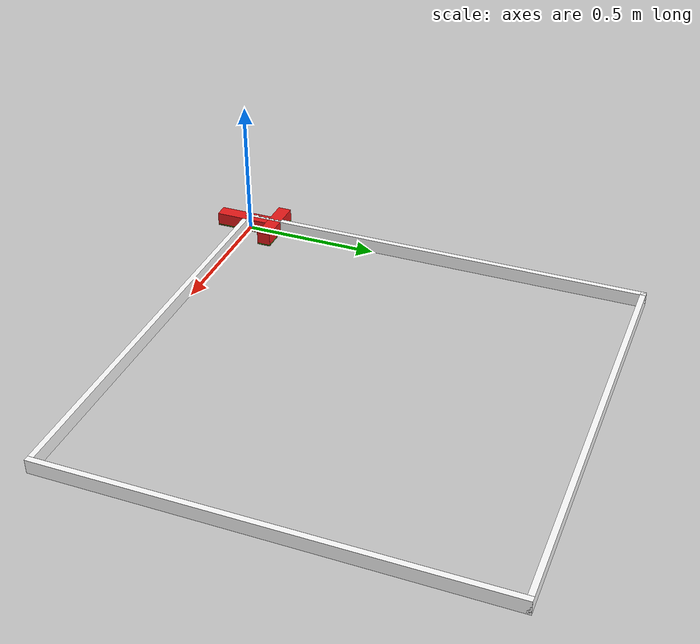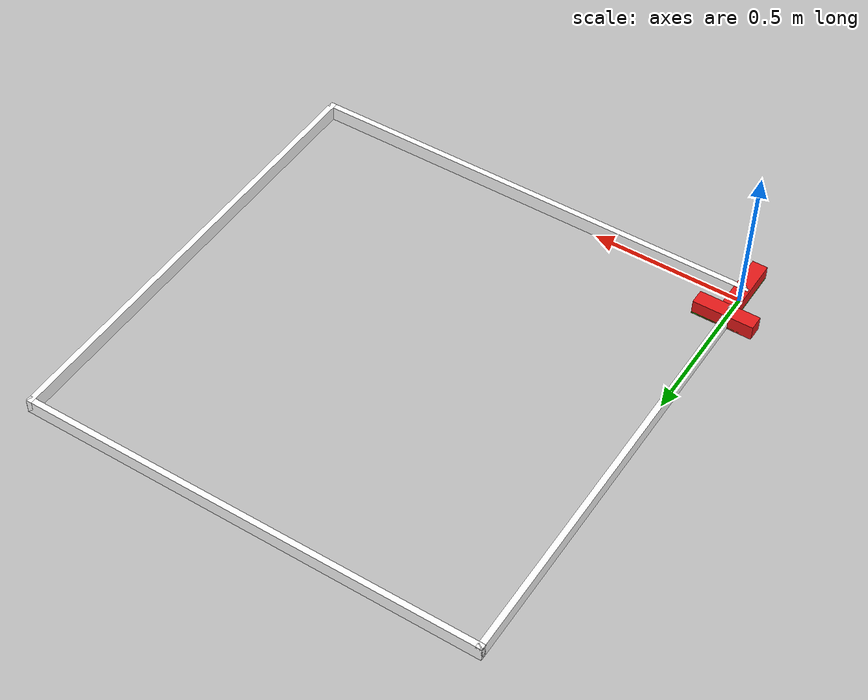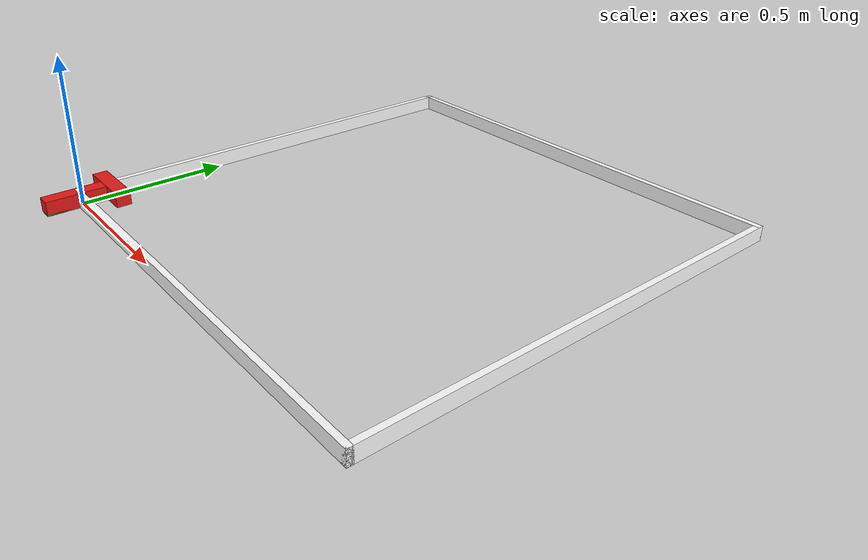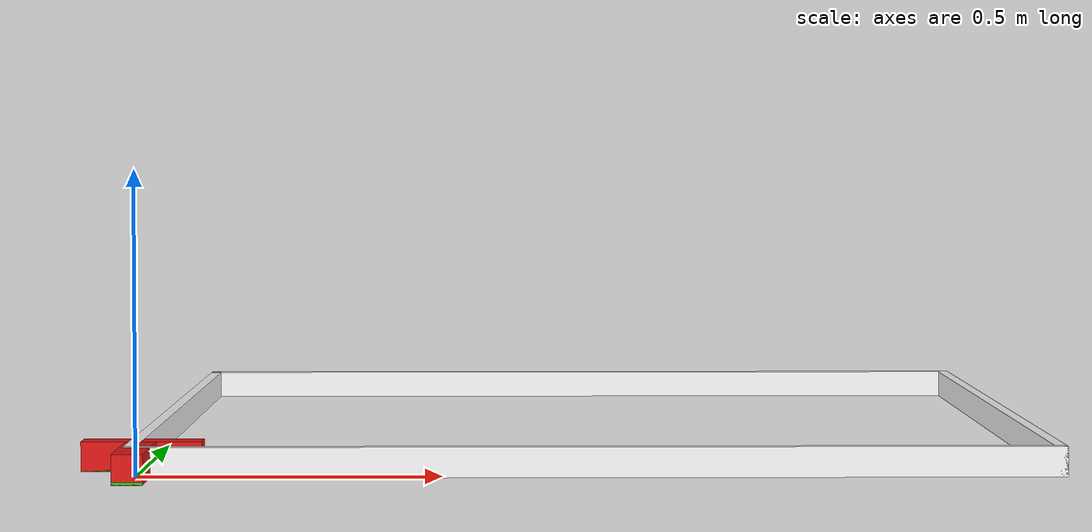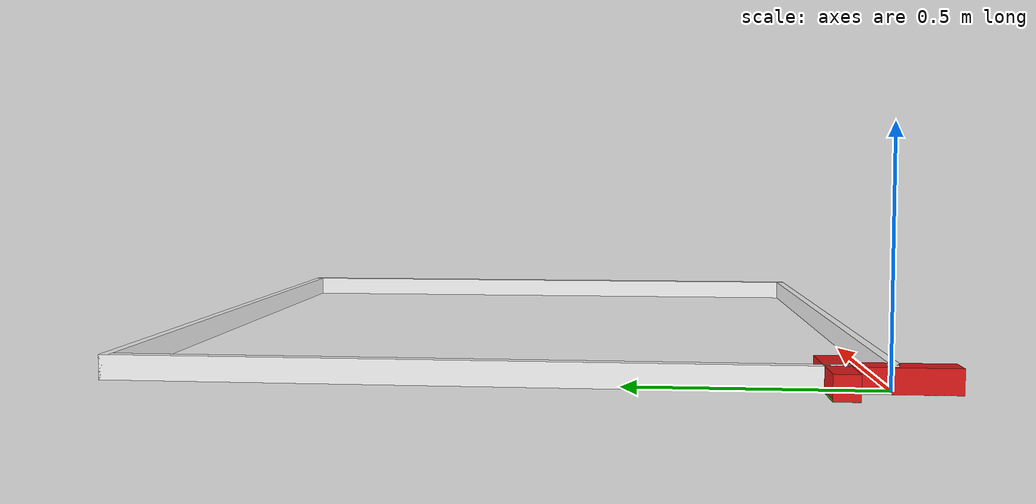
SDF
<?xml version="1.0"?>
<sdf version="1.7">
  <model name="pusht_env">
    <self_collide>true</self_collide>

    <!-- Canonical root link for the environment (floating base) -->
    <link name="env_center">
      <pose>0 0 0 0 0 0</pose>
      <inertial>
        <mass>1e-3</mass>
        <inertia>
          <ixx>1e-6</ixx><iyy>1e-6</iyy><izz>1e-6</izz><ixy>0</ixy><ixz>0</ixz><iyz>0</iyz>
        </inertia>
      </inertial>
    </link>

    <link name="wall_left">
      <gravity>false</gravity>
      <pose>-0.01 0.75 0.025 0 0 0</pose>
      <inertial>
        <mass>1.0</mass>
        <inertia>
          <ixx>0.2</ixx><iyy>0.2</iyy><izz>0.2</izz><ixy>0</ixy><ixz>0</ixz><iyz>0</iyz>
        </inertia>
      </inertial>
      <collision name="wall_left_collision">
        <geometry>
          <box><size>0.02 1.54 0.05</size></box>
        </geometry>
      </collision>
      <visual name="wall_left_visual">
        <geometry>
          <box><size>0.02 1.54 0.05</size></box>
        </geometry>
        <material>
          <ambient>1.0 1.0 1.0 1.0</ambient>
          <diffuse>1.0 1.0 1.0 1.0</diffuse>
        </material>
      </visual>
    </link>
    <joint name="wall_left_joint" type="revolute">
      <parent>env_center</parent>
      <child>wall_left</child>
      <axis>
        <xyz>0 0 1</xyz>
        <limit>
          <lower>0</lower>
          <upper>0</upper>
        </limit>
      </axis>
    </joint>

    <link name="wall_right">
      <gravity>false</gravity>
      <pose>1.51 0.75 0.025 0 0 0</pose>
      <inertial>
        <mass>1.0</mass>
        <inertia>
          <ixx>0.2</ixx><iyy>0.2</iyy><izz>0.2</izz><ixy>0</ixy><ixz>0</ixz><iyz>0</iyz>
        </inertia>
      </inertial>
      <collision name="wall_right_collision">
        <geometry>
          <box><size>0.02 1.54 0.05</size></box>
        </geometry>
      </collision>
      <visual name="wall_right_visual">
        <geometry>
          <box><size>0.02 1.54 0.05</size></box>
        </geometry>
        <material>
          <ambient>1.0 1.0 1.0 1.0</ambient>
          <diffuse>1.0 1.0 1.0 1.0</diffuse>
        </material>
      </visual>
    </link>
    <joint name="wall_right_joint" type="revolute">
      <parent>env_center</parent>
      <child>wall_right</child>
      <axis>
        <xyz>0 0 1</xyz>
        <limit>
          <lower>0</lower>
          <upper>0</upper>
        </limit>
      </axis>
    </joint>

    <link name="wall_bottom">
      <gravity>false</gravity>
      <pose>0.75 -0.01 0.025 0 0 0</pose>
      <inertial>
        <mass>1.0</mass>
        <inertia>
          <ixx>0.2</ixx><iyy>0.2</iyy><izz>0.2</izz><ixy>0</ixy><ixz>0</ixz><iyz>0</iyz>
        </inertia>
      </inertial>
      <collision name="wall_bottom_collision">
        <geometry>
          <box><size>1.54 0.02 0.05</size></box>
        </geometry>
      </collision>
      <visual name="wall_bottom_visual">
        <geometry>
          <box><size>1.54 0.02 0.05</size></box>
        </geometry>
        <material>
          <ambient>1.0 1.0 1.0 1.0</ambient>
          <diffuse>1.0 1.0 1.0 1.0</diffuse>
        </material>
      </visual>
    </link>
    <joint name="wall_bottom_joint" type="revolute">
      <parent>env_center</parent>
      <child>wall_bottom</child>
      <axis>
        <xyz>0 0 1</xyz>
        <limit>
          <lower>0</lower>
          <upper>0</upper>
        </limit>
      </axis>
    </joint>

    <link name="wall_top">
      <gravity>false</gravity>
      <pose>0.75 1.51 0.025 0 0 0</pose>
      <inertial>
        <mass>1.0</mass>
        <inertia>
          <ixx>0.2</ixx><iyy>0.2</iyy><izz>0.2</izz><ixy>0</ixy><ixz>0</ixz><iyz>0</iyz>
        </inertia>
      </inertial>
      <collision name="wall_top_collision">
        <geometry>
          <box><size>1.54 0.02 0.05</size></box>
        </geometry>
      </collision>
      <visual name="wall_top_visual">
        <geometry>
          <box><size>1.54 0.02 0.05</size></box>
        </geometry>
        <material>
          <ambient>1.0 1.0 1.0 1.0</ambient>
          <diffuse>1.0 1.0 1.0 1.0</diffuse>
        </material>
      </visual>
    </link>
    <joint name="wall_top_joint" type="revolute">
      <parent>env_center</parent>
      <child>wall_top</child>
      <axis>
        <xyz>0 0 1</xyz>
        <limit>
          <lower>0</lower>
          <upper>0</upper>
        </limit>
      </axis>
    </joint>

    <!-- ==================== T-BLOCK ==================== -->
    <link name="t_block_x">
      <inertial>
        <mass>1e-3</mass>
        <inertia>
          <ixx>1e-6</ixx><iyy>1e-6</iyy><izz>1e-6</izz><ixy>0</ixy><ixz>0</ixz><iyz>0</iyz>
        </inertia>
      </inertial>
    </link>
    <joint name="t_block_joint_x" type="prismatic">
      <parent>env_center</parent>
      <child>t_block_x</child>
      <axis><xyz>1 0 0</xyz></axis>
    </joint>

    <link name="t_block_y">
      <inertial>
        <mass>1e-3</mass>
        <inertia>
          <ixx>1e-6</ixx><iyy>1e-6</iyy><izz>1e-6</izz><ixy>0</ixy><ixz>0</ixz><iyz>0</iyz>
        </inertia>
      </inertial>
    </link>
    <joint name="t_block_joint_y" type="prismatic">
      <parent>t_block_x</parent>
      <child>t_block_y</child>
      <axis><xyz>0 1 0</xyz></axis>
    </joint>

    <link name="t_block">
      <pose>0 0 0 0 0 0</pose>
      <inertial>
        <pose>0 0.0375 0.025 0 0 0</pose>
        <mass>0.60</mass>
        <inertia>
          <ixx>3.531e-3</ixx>
          <iyy>1.188e-3</iyy>
          <izz>4.469e-3</izz>
          <ixy>0</ixy>
          <ixz>0</ixz>
          <iyz>0</iyz>
        </inertia>
      </inertial>

      <!-- Top bar -->
      <collision name="top_bar">
        <pose>0 0.10 0.025 0 0 0</pose>
        <geometry>
          <box><size>0.20 0.05 0.05</size></box>
        </geometry>
      </collision>
      <visual name="top_bar_visual">
        <pose>0 0.10 0.025 0 0 0</pose>
        <geometry>
          <box><size>0.20 0.05 0.05</size></box>
        </geometry>
        <material>
          <ambient>0.9 0.1 0.1 1.0</ambient>
          <diffuse>0.9 0.1 0.1 1.0</diffuse>
        </material>
      </visual>

      <!-- Stem -->
      <collision name="stem">
        <pose>0 -0.025 0.025 0 0 0</pose>
        <geometry>
          <box><size>0.05 0.20 0.05</size></box>
        </geometry>
      </collision>
      <visual name="stem_visual">
        <pose>0 -0.025 0.025 0 0 0</pose>
        <geometry>
          <box><size>0.05 0.20 0.05</size></box>
        </geometry>
        <material>
          <ambient>0.9 0.1 0.1 1.0</ambient>
          <diffuse>0.9 0.1 0.1 1.0</diffuse>
        </material>
      </visual>
    </link>
    <joint name="t_block_joint_theta" type="continuous">
      <parent>t_block_y</parent>
      <child>t_block</child>
      <axis><xyz>0 0 1</xyz></axis>
    </joint>

    <!-- ==================== T-BLOCK - TARGET ==================== -->
    <link name="t_target_block_x">
      <gravity>false</gravity>
      <inertial>
        <mass>1e-3</mass>
        <inertia>
          <ixx>1e-6</ixx><iyy>1e-6</iyy><izz>1e-6</izz><ixy>0</ixy><ixz>0</ixz><iyz>0</iyz>
        </inertia>
      </inertial>
    </link>
    <joint name="t_target_block_joint_x" type="prismatic">
      <parent>env_center</parent>
      <child>t_target_block_x</child>
      <axis><xyz>1 0 0</xyz></axis>
    </joint>

    <link name="t_target_block_y">
      <gravity>false</gravity>
      <inertial>
        <mass>1e-3</mass>
        <inertia>
          <ixx>1e-6</ixx><iyy>1e-6</iyy><izz>1e-6</izz><ixy>0</ixy><ixz>0</ixz><iyz>0</iyz>
        </inertia>
      </inertial>
    </link>
    <joint name="t_target_block_joint_y" type="prismatic">
      <parent>t_target_block_x</parent>
      <child>t_target_block_y</child>
      <axis><xyz>0 1 0</xyz></axis>
    </joint>

    <link name="t_target_block">
      <pose>0 0 0 0 0 0</pose>
      <gravity>false</gravity>
      <inertial>
        <pose>0 0.0375 0.0025 0 0 0</pose>
        <mass>1e-6</mass>
        <inertia>
          <ixx>1e-6</ixx>
          <iyy>1e-6</iyy>
          <izz>1e-6</izz>
          <ixy>0</ixy>
          <ixz>0</ixz>
          <iyz>0</iyz>
        </inertia>
      </inertial>

      <!-- Top bar -->
      <visual name="t_target_top_bar_visual">
        <pose>0 0.10 0.0025 0 0 0</pose>
        <geometry>
          <box><size>0.20 0.05 0.005</size></box>
        </geometry>
        <material>
          <ambient>0.2 0.80 0.10 1.0</ambient>
          <diffuse>0.2 0.80 0.10 1.0</diffuse>
        </material>
      </visual>

      <!-- Stem -->
      <visual name="t_target_stem_visual">
        <pose>0 -0.025 0.0025 0 0 0</pose>
        <geometry>
          <box><size>0.05 0.20 0.005</size></box>
        </geometry>
        <material>
          <ambient>0.2 0.80 0.10 1.0</ambient>
          <diffuse>0.2 0.80 0.10 1.0</diffuse>
        </material>
      </visual>
    </link>
    <joint name="t_target_block_joint_theta" type="continuous">
      <parent>t_target_block_y</parent>
      <child>t_target_block</child>
      <axis><xyz>0 0 1</xyz></axis>
    </joint>

    <!-- ==================== PUSHER ==================== -->
    <link name="pusher_x">
      <inertial>
        <mass>1e-3</mass>
        <inertia>
          <ixx>1e-6</ixx><iyy>1e-6</iyy><izz>1e-6</izz><ixy>0</ixy><ixz>0</ixz><iyz>0</iyz>
        </inertia>
      </inertial>
    </link>
    <joint name="pusher_joint_x" type="prismatic">
      <parent>env_center</parent>
      <child>pusher_x</child>
      <axis><xyz>1 0 0</xyz></axis>
    </joint>

    <link name="pusher_link">
      <pose>0 0 0.025 0 0 0</pose>
      <inertial>
        <pose>0 0 0 0 0 0</pose>
        <mass>0.1</mass>
        <inertia>
          <ixx>2.333e-5</ixx>
          <iyy>2.333e-5</iyy>
          <izz>5.000e-6</izz>
          <ixy>0</ixy>
          <ixz>0</ixz>
          <iyz>0</iyz>
        </inertia>
      </inertial>
      <collision name="pusher_collision">
        <pose>0 0 0 0 0 0</pose>
        <geometry>
          <box><size>0.02 0.02 0.05</size></box>
        </geometry>
      </collision>
      <visual name="pusher_visual">
        <pose>0 0 0 0 0 0</pose>
        <geometry>
          <cylinder>
            <radius>0.01</radius>
            <length>0.05</length>
          </cylinder>
        </geometry>
        <material>
          <ambient>0.90 0.90 0.80 1.0</ambient>
          <diffuse>0.90 0.90 1.00 1.0</diffuse>
        </material>
      </visual>
    </link>
    <joint name="pusher_joint_y" type="prismatic">
      <parent>pusher_x</parent>
      <child>pusher_link</child>
      <axis><xyz>0 1 0</xyz></axis>
    </joint>

  </model>
</sdf>
